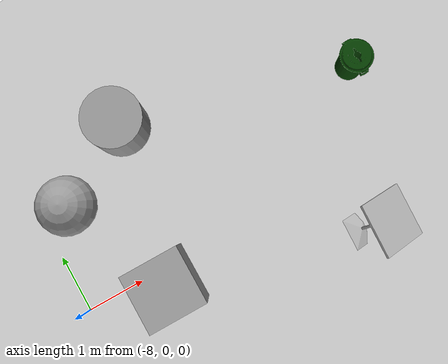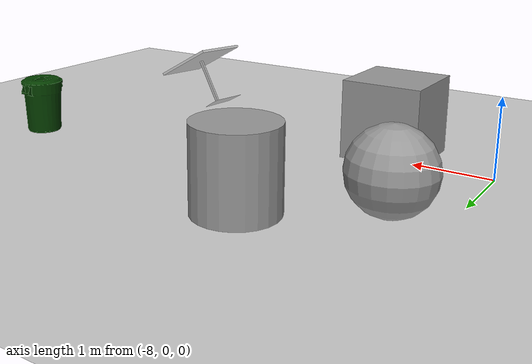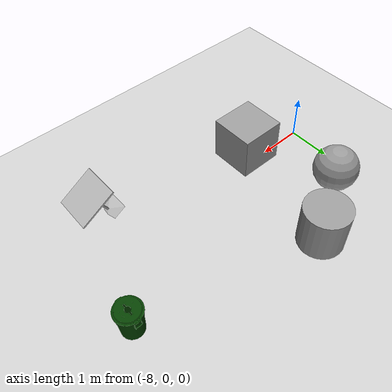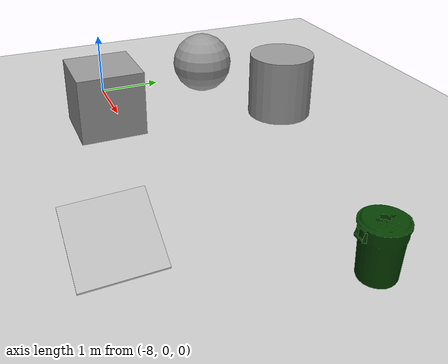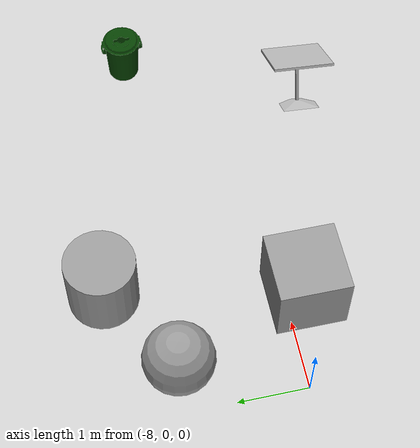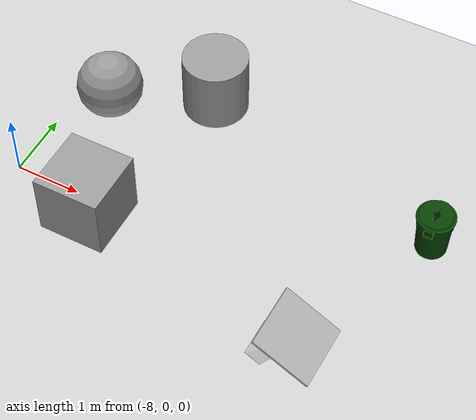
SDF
<sdf version="1.6">
 <world name="default">
  <light name="sun" type="directional">
   <pose>0 0 10 0 -0 0</pose>
   <diffuse>0.8 0.8 0.8 1</diffuse>
   <specular>0.2 0.2 0.2 1</specular>
   <attenuation>
    <range>1000</range>
    <constant>0.9</constant>
    <linear>0.01</linear>
    <quadratic>0.001</quadratic>
   </attenuation>
   <direction>-0.5 0.1 -0.9</direction>
  </light>
  <model name="ground_plane">
   <static>1</static>
   <link name="link">
    <collision name="collision">
     <geometry><plane><normal>0 0 1</normal><size>100 100</size></plane></geometry>
     <surface>
      <contact><collide_bitmask>65535</collide_bitmask></contact>
      <friction><ode><mu>100</mu><mu2>50</mu2></ode></friction>
     </surface>
    </collision>
    <visual name="visual">
     <cast_shadows>0</cast_shadows>
     <geometry><plane><normal>0 0 1</normal><size>100 100</size></plane></geometry>
     <material>
      <script><uri>file://media/materials/scripts/gazebo.material</uri><name>Gazebo/Grey</name></script>
     </material>
    </visual>
   </link>
  </model>
  <gravity>0 0 -9.8</gravity>
  <magnetic_field>6e-06 2.3e-05 -4.2e-05</magnetic_field>
  <atmosphere type="adiabatic"/>
  <physics name="default_physics" default="0" type="ode">
   <max_step_size>0.001</max_step_size>
   <real_time_factor>1</real_time_factor>
   <real_time_update_rate>1000</real_time_update_rate>
  </physics>
  <scene><ambient>0.4 0.4 0.4 1</ambient><background>0.7 0.7 0.7 1</background><shadows>1</shadows></scene>
  <spherical_coordinates>
   <surface_model>EARTH_WGS84</surface_model>
   <latitude_deg>0</latitude_deg>
   <longitude_deg>0</longitude_deg>
   <elevation>0</elevation>
   <heading_deg>0</heading_deg>
  </spherical_coordinates>
  <model name="unit_box">
   <pose>-6.62804 -0.261024 0.499995 0 -1e-05 0</pose>
   <link name="link">
    <inertial>
     <mass>1</mass>
     <inertia>
      <ixx>0.166667</ixx>
      <ixy>0</ixy>
      <ixz>0</ixz>
      <iyy>0.166667</iyy>
      <iyz>0</iyz>
      <izz>0.166667</izz>
     </inertia>
    </inertial>
    <collision name="collision"><geometry><box><size>1 1 1</size></box></geometry></collision>
    <visual name="visual">
     <geometry><box><size>1 1 1</size></box></geometry>
     <material>
      <script><name>Gazebo/Grey</name><uri>file://media/materials/scripts/gazebo.material</uri></script>
     </material>
    </visual>
   </link>
  </model>
  <model name="unit_sphere">
   <pose>-7.42064 1.6722 0.5 0 -0 0</pose>
   <link name="link">
    <inertial>
     <mass>1</mass>
     <inertia><ixx>0.1</ixx><ixy>0</ixy><ixz>0</ixz><iyy>0.1</iyy><iyz>0</iyz><izz>0.1</izz></inertia>
    </inertial>
    <collision name="collision"><geometry><sphere><radius>0.5</radius></sphere></geometry></collision>
    <visual name="visual">
     <geometry><sphere><radius>0.5</radius></sphere></geometry>
     <material>
      <script><name>Gazebo/Grey</name><uri>file://media/materials/scripts/gazebo.material</uri></script>
     </material>
    </visual>
   </link>
  </model>
  <model name="unit_cylinder">
   <pose>-6.05756 2.47706 0.499998 3e-06 4e-06 -0</pose>
   <link name="link">
    <inertial>
     <mass>1</mass>
     <inertia><ixx>0.145833</ixx><ixy>0</ixy><ixz>0</ixz><iyy>0.145833</iyy><iyz>0</iyz><izz>0.125</izz></inertia>
    </inertial>
    <collision name="collision">
     <geometry><cylinder><radius>0.5</radius><length>1</length></cylinder></geometry>
    </collision>
    <visual name="visual">
     <geometry><cylinder><radius>0.5</radius><length>1</length></cylinder></geometry>
     <material>
      <script><name>Gazebo/Grey</name><uri>file://media/materials/scripts/gazebo.material</uri></script>
     </material>
    </visual>
   </link>
  </model>
  <model name="cafe_table">
   <static>1</static>
   <link name="link">
    <collision name="surface">
     <pose>0 0 0.755 0 -0 0</pose>
     <geometry><box><size>0.913 0.913 0.04</size></box></geometry>
    </collision>
    <collision name="column">
     <pose>0 0 0.37 0 -0 0</pose>
     <geometry><box><size>0.042 0.042 0.74</size></box></geometry>
    </collision>
    <collision name="base">
     <pose>0 0 0.02 0 -0 0</pose>
     <geometry><box><size>0.56 0.56 0.04</size></box></geometry>
    </collision>
    <visual name="visual">
     <geometry><mesh><uri>model://cafe_table/meshes/cafe_table.dae</uri></mesh></geometry>
    </visual>
   </link>
   <pose>-3.32599 -1.04288 0 0.064939 0.523921 -0</pose>
  </model>
  <model name="first_2015_trash_can">
   <link name="link">
    <inertial>
     <pose>0 0 0.3683 0 -0 0</pose>
     <mass>4.83076</mass>
     <inertia>
      <ixx>0.281534</ixx>
      <ixy>0</ixy>
      <ixz>0</ixz>
      <iyy>0.281534</iyy>
      <iyz>0</iyz>
      <izz>0.126223</izz>
     </inertia>
    </inertial>
    <visual name="visual">
     <geometry><mesh><uri>model://first_2015_trash_can/meshes/trash_can.dae</uri></mesh></geometry>
    </visual>
    <collision name="collision">
     <geometry><mesh><uri>model://first_2015_trash_can/meshes/trash_can.dae</uri></mesh></geometry>
    </collision>
   </link>
   <pose>-2.1052 1.49416 -5e-06 -4e-06 -1e-06 -0.003399</pose>
  </model>
 </world>
</sdf>
